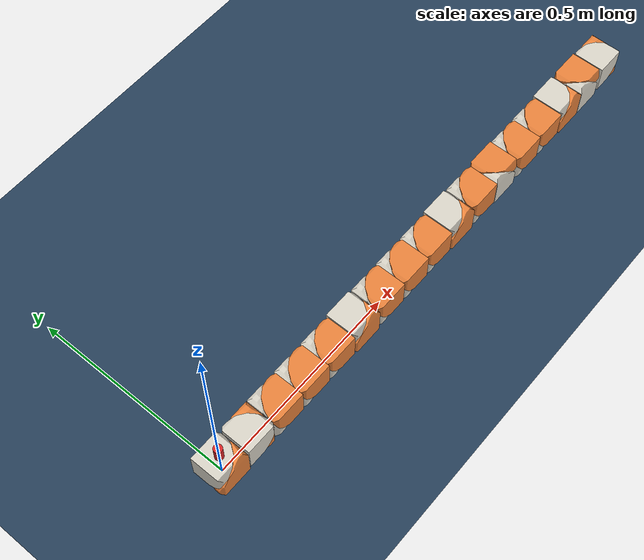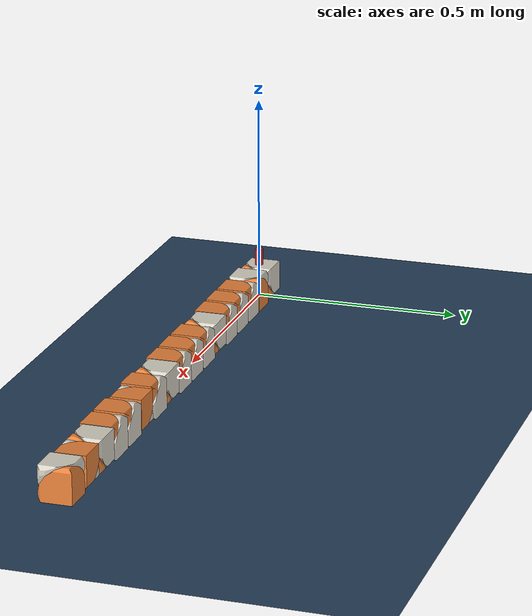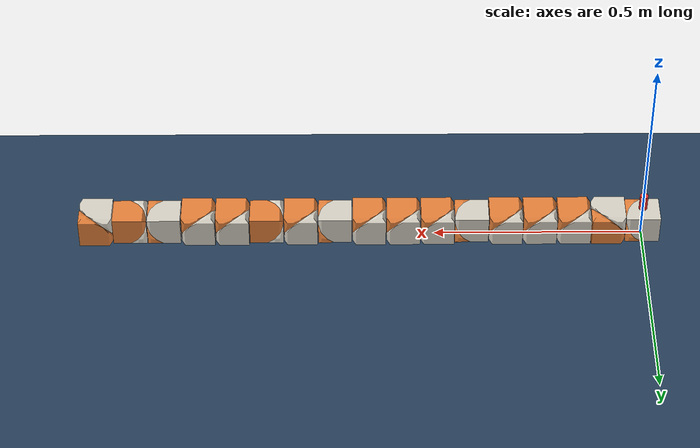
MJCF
<mujoco model="cubot_17 scene">
  <!-- Load THIS file. It adds the floor, lights and camera around the chain in cubot_17.xml. -->
  <include file="cubot_17.xml"/>

  <statistic center="0.66 0 0.05" extent="1.6"/>
  <visual>
    <headlight diffuse="0.6 0.6 0.6" ambient="0.3 0.3 0.3" specular="0 0 0"/>
    <rgba haze="0.15 0.25 0.35 1"/>
    <global azimuth="140" elevation="-25" offwidth="1920" offheight="1080"/>
    <map znear="0.01"/>
  </visual>
  <asset>
    <texture type="skybox" builtin="gradient" rgb1="0.3 0.5 0.7" rgb2="0 0 0" width="512" height="3072"/>
    <texture type="2d" name="groundplane" builtin="checker" mark="edge" rgb1="0.2 0.3 0.4" rgb2="0.1 0.2 0.3"
             markrgb="0.8 0.8 0.8" width="300" height="300"/>
    <material name="groundplane" texture="groundplane" texuniform="true" texrepeat="5 5" reflectance="0.2"/>
  </asset>
  <worldbody>
    <light pos="0 0 3" dir="0 0 -1" directional="true"/>
    <light pos="1.5 -1.5 2" dir="-0.4 0.4 -1" diffuse="0.4 0.4 0.4"/>
    <geom name="floor" type="plane" size="0 0 0.05" material="groundplane"/>
  </worldbody>
</mujoco>

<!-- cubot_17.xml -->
<mujoco model="cubot_17">
  <compiler angle="radian" meshdir="meshes" autolimits="true"/>
  <option timestep="0.002" integrator="implicitfast"/>

  <default>
    <joint damping="0.05" armature="0.005"/>
    <geom friction="0.8 0.01 0.001"/>
    <default class="still"><geom type="mesh" rgba="0.85 0.83 0.78 1"/></default>
    <default class="moving"><geom type="mesh" rgba="0.91 0.51 0.23 1"/></default>
    <default class="spacer"><geom type="box" rgba="0.45 0.47 0.5 1"/></default>
    <default class="wires"><geom type="cylinder" rgba="0.86 0.15 0.15 1"/></default>
    <default class="servo">
      <!-- a stiff position servo holding whatever detent it is commanded; force-capped at the planner's default -->
      <position kp="30" kv="1" ctrlrange="-2.09440 2.09440" forcerange="-5.8 5.8"/>
    </default>
  </default>

  <asset>
    <mesh name="still" file="still.stl"/>
    <mesh name="moving" file="moving.stl"/>
  </asset>

  <worldbody>
    <!-- laid down rolled 180 deg about +X so module 01's wires stay off the floor -->
    <body name="m01_still" pos="0 0 0.0400" quat="0.00000000 1.00000000 0 0">
      <freejoint name="root"/>
      <inertial pos="-0.01103093 -0.01103093 -0.01103093" mass="0.125" fullinertia="9.83829037e-05 9.83829037e-05 9.83829037e-05 1.31849188e-05 1.31849188e-05 1.31849188e-05"/>
      <geom class="still" mesh="still"/>
      <geom name="wires" class="wires" pos="0 0 -0.0600" size="0.01 0.02"/>
      <body name="m01_moving">
        <joint name="servo01" axis="0.57735027 0.57735027 0.57735027" range="-2.09439510 2.09439510"/>
        <inertial pos="0.01103093 0.01103093 0.01103093" mass="0.125" fullinertia="9.83829037e-05 9.83829037e-05 9.83829037e-05 1.31849188e-05 1.31849188e-05 1.31849188e-05"/>
        <geom class="moving" mesh="moving"/>
        <geom class="spacer" pos="0.041100 0 0" size="0.0011 0.025 0.025"/>
        <body name="m02_still" pos="0.0822 0 0" quat="0.70710678 0.70710678 0 0">
          <inertial pos="-0.01103093 -0.01103093 -0.01103093" mass="0.125" fullinertia="9.83829037e-05 9.83829037e-05 9.83829037e-05 1.31849188e-05 1.31849188e-05 1.31849188e-05"/>
          <geom class="still" mesh="still"/>
          <body name="m02_moving">
            <joint name="servo02" axis="0.57735027 0.57735027 0.57735027" range="-2.09439510 2.09439510"/>
            <inertial pos="0.01103093 0.01103093 0.01103093" mass="0.125" fullinertia="9.83829037e-05 9.83829037e-05 9.83829037e-05 1.31849188e-05 1.31849188e-05 1.31849188e-05"/>
            <geom class="moving" mesh="moving"/>
            <geom class="spacer" pos="0.041100 0 0" size="0.0011 0.025 0.025"/>
            <body name="m03_still" pos="0.0822 0 0" quat="0.00000000 1.00000000 0 0">
              <inertial pos="-0.01103093 -0.01103093 -0.01103093" mass="0.125" fullinertia="9.83829037e-05 9.83829037e-05 9.83829037e-05 1.31849188e-05 1.31849188e-05 1.31849188e-05"/>
              <geom class="still" mesh="still"/>
              <body name="m03_moving">
                <joint name="servo03" axis="0.57735027 0.57735027 0.57735027" range="-2.09439510 2.09439510"/>
                <inertial pos="0.01103093 0.01103093 0.01103093" mass="0.125" fullinertia="9.83829037e-05 9.83829037e-05 9.83829037e-05 1.31849188e-05 1.31849188e-05 1.31849188e-05"/>
                <geom class="moving" mesh="moving"/>
                <geom class="spacer" pos="0.041100 0 0" size="0.0011 0.025 0.025"/>
                <body name="m04_still" pos="0.0822 0 0" quat="1.00000000 0.00000000 0 0">
                  <inertial pos="-0.01103093 -0.01103093 -0.01103093" mass="0.125" fullinertia="9.83829037e-05 9.83829037e-05 9.83829037e-05 1.31849188e-05 1.31849188e-05 1.31849188e-05"/>
                  <geom class="still" mesh="still"/>
                  <body name="m04_moving">
                    <joint name="servo04" axis="0.57735027 0.57735027 0.57735027" range="-2.09439510 2.09439510"/>
                    <inertial pos="0.01103093 0.01103093 0.01103093" mass="0.125" fullinertia="9.83829037e-05 9.83829037e-05 9.83829037e-05 1.31849188e-05 1.31849188e-05 1.31849188e-05"/>
                    <geom class="moving" mesh="moving"/>
                    <geom class="spacer" pos="0.041100 0 0" size="0.0011 0.025 0.025"/>
                    <body name="m05_still" pos="0.0822 0 0" quat="1.00000000 0.00000000 0 0">
                      <inertial pos="-0.01103093 -0.01103093 -0.01103093" mass="0.125" fullinertia="9.83829037e-05 9.83829037e-05 9.83829037e-05 1.31849188e-05 1.31849188e-05 1.31849188e-05"/>
                      <geom class="still" mesh="still"/>
                      <body name="m05_moving">
                        <joint name="servo05" axis="0.57735027 0.57735027 0.57735027" range="-2.09439510 2.09439510"/>
                        <inertial pos="0.01103093 0.01103093 0.01103093" mass="0.125" fullinertia="9.83829037e-05 9.83829037e-05 9.83829037e-05 1.31849188e-05 1.31849188e-05 1.31849188e-05"/>
                        <geom class="moving" mesh="moving"/>
                        <geom class="spacer" pos="0.041100 0 0" size="0.0011 0.025 0.025"/>
                        <body name="m06_still" pos="0.0822 0 0" quat="0.70710678 0.70710678 0 0">
                          <inertial pos="-0.01103093 -0.01103093 -0.01103093" mass="0.125" fullinertia="9.83829037e-05 9.83829037e-05 9.83829037e-05 1.31849188e-05 1.31849188e-05 1.31849188e-05"/>
                          <geom class="still" mesh="still"/>
                          <body name="m06_moving">
                            <joint name="servo06" axis="0.57735027 0.57735027 0.57735027" range="-2.09439510 2.09439510"/>
                            <inertial pos="0.01103093 0.01103093 0.01103093" mass="0.125" fullinertia="9.83829037e-05 9.83829037e-05 9.83829037e-05 1.31849188e-05 1.31849188e-05 1.31849188e-05"/>
                            <geom class="moving" mesh="moving"/>
                            <geom class="spacer" pos="0.041100 0 0" size="0.0011 0.025 0.025"/>
                            <body name="m07_still" pos="0.0822 0 0" quat="-0.70710678 0.70710678 0 0">
                              <inertial pos="-0.01103093 -0.01103093 -0.01103093" mass="0.125" fullinertia="9.83829037e-05 9.83829037e-05 9.83829037e-05 1.31849188e-05 1.31849188e-05 1.31849188e-05"/>
                              <geom class="still" mesh="still"/>
                              <body name="m07_moving">
                                <joint name="servo07" axis="0.57735027 0.57735027 0.57735027" range="-2.09439510 2.09439510"/>
                                <inertial pos="0.01103093 0.01103093 0.01103093" mass="0.125" fullinertia="9.83829037e-05 9.83829037e-05 9.83829037e-05 1.31849188e-05 1.31849188e-05 1.31849188e-05"/>
                                <geom class="moving" mesh="moving"/>
                                <geom class="spacer" pos="0.041100 0 0" size="0.0011 0.025 0.025"/>
                                <body name="m08_still" pos="0.0822 0 0" quat="1.00000000 0.00000000 0 0">
                                  <inertial pos="-0.01103093 -0.01103093 -0.01103093" mass="0.125" fullinertia="9.83829037e-05 9.83829037e-05 9.83829037e-05 1.31849188e-05 1.31849188e-05 1.31849188e-05"/>
                                  <geom class="still" mesh="still"/>
                                  <body name="m08_moving">
                                    <joint name="servo08" axis="0.57735027 0.57735027 0.57735027" range="-2.09439510 2.09439510"/>
                                    <inertial pos="0.01103093 0.01103093 0.01103093" mass="0.125" fullinertia="9.83829037e-05 9.83829037e-05 9.83829037e-05 1.31849188e-05 1.31849188e-05 1.31849188e-05"/>
                                    <geom class="moving" mesh="moving"/>
                                    <geom class="spacer" pos="0.041100 0 0" size="0.0011 0.025 0.025"/>
                                    <body name="m09_still" pos="0.0822 0 0" quat="1.00000000 0.00000000 0 0">
                                      <inertial pos="-0.01103093 -0.01103093 -0.01103093" mass="0.125" fullinertia="9.83829037e-05 9.83829037e-05 9.83829037e-05 1.31849188e-05 1.31849188e-05 1.31849188e-05"/>
                                      <geom class="still" mesh="still"/>
                                      <body name="m09_moving">
                                        <joint name="servo09" axis="0.57735027 0.57735027 0.57735027" range="-2.09439510 2.09439510"/>
                                        <inertial pos="0.01103093 0.01103093 0.01103093" mass="0.125" fullinertia="9.83829037e-05 9.83829037e-05 9.83829037e-05 1.31849188e-05 1.31849188e-05 1.31849188e-05"/>
                                        <geom class="moving" mesh="moving"/>
                                        <geom class="spacer" pos="0.041100 0 0" size="0.0011 0.025 0.025"/>
                                        <body name="m10_still" pos="0.0822 0 0" quat="0.70710678 0.70710678 0 0">
                                          <inertial pos="-0.01103093 -0.01103093 -0.01103093" mass="0.125" fullinertia="9.83829037e-05 9.83829037e-05 9.83829037e-05 1.31849188e-05 1.31849188e-05 1.31849188e-05"/>
                                          <geom class="still" mesh="still"/>
                                          <body name="m10_moving">
                                            <joint name="servo10" axis="0.57735027 0.57735027 0.57735027" range="-2.09439510 2.09439510"/>
                                            <inertial pos="0.01103093 0.01103093 0.01103093" mass="0.125" fullinertia="9.83829037e-05 9.83829037e-05 9.83829037e-05 1.31849188e-05 1.31849188e-05 1.31849188e-05"/>
                                            <geom class="moving" mesh="moving"/>
                                            <geom class="spacer" pos="0.041100 0 0" size="0.0011 0.025 0.025"/>
                                            <body name="m11_still" pos="0.0822 0 0" quat="-0.70710678 0.70710678 0 0">
                                              <inertial pos="-0.01103093 -0.01103093 -0.01103093" mass="0.125" fullinertia="9.83829037e-05 9.83829037e-05 9.83829037e-05 1.31849188e-05 1.31849188e-05 1.31849188e-05"/>
                                              <geom class="still" mesh="still"/>
                                              <body name="m11_moving">
                                                <joint name="servo11" axis="0.57735027 0.57735027 0.57735027" range="-2.09439510 2.09439510"/>
                                                <inertial pos="0.01103093 0.01103093 0.01103093" mass="0.125" fullinertia="9.83829037e-05 9.83829037e-05 9.83829037e-05 1.31849188e-05 1.31849188e-05 1.31849188e-05"/>
                                                <geom class="moving" mesh="moving"/>
                                                <geom class="spacer" pos="0.041100 0 0" size="0.0011 0.025 0.025"/>
                                                <body name="m12_still" pos="0.0822 0 0" quat="-0.70710678 0.70710678 0 0">
                                                  <inertial pos="-0.01103093 -0.01103093 -0.01103093" mass="0.125" fullinertia="9.83829037e-05 9.83829037e-05 9.83829037e-05 1.31849188e-05 1.31849188e-05 1.31849188e-05"/>
                                                  <geom class="still" mesh="still"/>
                                                  <body name="m12_moving">
                                                    <joint name="servo12" axis="0.57735027 0.57735027 0.57735027" range="-2.09439510 2.09439510"/>
                                                    <inertial pos="0.01103093 0.01103093 0.01103093" mass="0.125" fullinertia="9.83829037e-05 9.83829037e-05 9.83829037e-05 1.31849188e-05 1.31849188e-05 1.31849188e-05"/>
                                                    <geom class="moving" mesh="moving"/>
                                                    <geom class="spacer" pos="0.041100 0 0" size="0.0011 0.025 0.025"/>
                                                    <body name="m13_still" pos="0.0822 0 0" quat="0.70710678 0.70710678 0 0">
                                                      <inertial pos="-0.01103093 -0.01103093 -0.01103093" mass="0.125" fullinertia="9.83829037e-05 9.83829037e-05 9.83829037e-05 1.31849188e-05 1.31849188e-05 1.31849188e-05"/>
                                                      <geom class="still" mesh="still"/>
                                                      <body name="m13_moving">
                                                        <joint name="servo13" axis="0.57735027 0.57735027 0.57735027" range="-2.09439510 2.09439510"/>
                                                        <inertial pos="0.01103093 0.01103093 0.01103093" mass="0.125" fullinertia="9.83829037e-05 9.83829037e-05 9.83829037e-05 1.31849188e-05 1.31849188e-05 1.31849188e-05"/>
                                                        <geom class="moving" mesh="moving"/>
                                                        <geom class="spacer" pos="0.041100 0 0" size="0.0011 0.025 0.025"/>
                                                        <body name="m14_still" pos="0.0822 0 0" quat="1.00000000 0.00000000 0 0">
                                                          <inertial pos="-0.01103093 -0.01103093 -0.01103093" mass="0.125" fullinertia="9.83829037e-05 9.83829037e-05 9.83829037e-05 1.31849188e-05 1.31849188e-05 1.31849188e-05"/>
                                                          <geom class="still" mesh="still"/>
                                                          <body name="m14_moving">
                                                            <joint name="servo14" axis="0.57735027 0.57735027 0.57735027" range="-2.09439510 2.09439510"/>
                                                            <inertial pos="0.01103093 0.01103093 0.01103093" mass="0.125" fullinertia="9.83829037e-05 9.83829037e-05 9.83829037e-05 1.31849188e-05 1.31849188e-05 1.31849188e-05"/>
                                                            <geom class="moving" mesh="moving"/>
                                                            <geom class="spacer" pos="0.041100 0 0" size="0.0011 0.025 0.025"/>
                                                            <body name="m15_still" pos="0.0822 0 0" quat="0.70710678 0.70710678 0 0">
                                                              <inertial pos="-0.01103093 -0.01103093 -0.01103093" mass="0.125" fullinertia="9.83829037e-05 9.83829037e-05 9.83829037e-05 1.31849188e-05 1.31849188e-05 1.31849188e-05"/>
                                                              <geom class="still" mesh="still"/>
                                                              <body name="m15_moving">
                                                                <joint name="servo15" axis="0.57735027 0.57735027 0.57735027" range="-2.09439510 2.09439510"/>
                                                                <inertial pos="0.01103093 0.01103093 0.01103093" mass="0.125" fullinertia="9.83829037e-05 9.83829037e-05 9.83829037e-05 1.31849188e-05 1.31849188e-05 1.31849188e-05"/>
                                                                <geom class="moving" mesh="moving"/>
                                                                <geom class="spacer" pos="0.041100 0 0" size="0.0011 0.025 0.025"/>
                                                                <body name="m16_still" pos="0.0822 0 0" quat="0.00000000 1.00000000 0 0">
                                                                  <inertial pos="-0.01103093 -0.01103093 -0.01103093" mass="0.125" fullinertia="9.83829037e-05 9.83829037e-05 9.83829037e-05 1.31849188e-05 1.31849188e-05 1.31849188e-05"/>
                                                                  <geom class="still" mesh="still"/>
                                                                  <body name="m16_moving">
                                                                    <joint name="servo16" axis="0.57735027 0.57735027 0.57735027" range="-2.09439510 2.09439510"/>
                                                                    <inertial pos="0.01103093 0.01103093 0.01103093" mass="0.125" fullinertia="9.83829037e-05 9.83829037e-05 9.83829037e-05 1.31849188e-05 1.31849188e-05 1.31849188e-05"/>
                                                                    <geom class="moving" mesh="moving"/>
                                                                    <geom class="spacer" pos="0.041100 0 0" size="0.0011 0.025 0.025"/>
                                                                    <body name="m17_still" pos="0.0822 0 0" quat="-0.70710678 0.70710678 0 0">
                                                                      <inertial pos="-0.01103093 -0.01103093 -0.01103093" mass="0.125" fullinertia="9.83829037e-05 9.83829037e-05 9.83829037e-05 1.31849188e-05 1.31849188e-05 1.31849188e-05"/>
                                                                      <geom class="still" mesh="still"/>
                                                                      <body name="m17_moving">
                                                                        <joint name="servo17" axis="0.57735027 0.57735027 0.57735027" range="-2.09439510 2.09439510"/>
                                                                        <inertial pos="0.01103093 0.01103093 0.01103093" mass="0.125" fullinertia="9.83829037e-05 9.83829037e-05 9.83829037e-05 1.31849188e-05 1.31849188e-05 1.31849188e-05"/>
                                                                        <geom class="moving" mesh="moving"/>
                                                                      </body>
                                                                    </body>
                                                                  </body>
                                                                </body>
                                                              </body>
                                                            </body>
                                                          </body>
                                                        </body>
                                                      </body>
                                                    </body>
                                                  </body>
                                                </body>
                                              </body>
                                            </body>
                                          </body>
                                        </body>
                                      </body>
                                    </body>
                                  </body>
                                </body>
                              </body>
                            </body>
                          </body>
                        </body>
                      </body>
                    </body>
                  </body>
                </body>
              </body>
            </body>
          </body>
        </body>
      </body>
    </body>
  </worldbody>

  <actuator>
    <position class="servo" name="servo01" joint="servo01"/>
    <position class="servo" name="servo02" joint="servo02"/>
    <position class="servo" name="servo03" joint="servo03"/>
    <position class="servo" name="servo04" joint="servo04"/>
    <position class="servo" name="servo05" joint="servo05"/>
    <position class="servo" name="servo06" joint="servo06"/>
    <position class="servo" name="servo07" joint="servo07"/>
    <position class="servo" name="servo08" joint="servo08"/>
    <position class="servo" name="servo09" joint="servo09"/>
    <position class="servo" name="servo10" joint="servo10"/>
    <position class="servo" name="servo11" joint="servo11"/>
    <position class="servo" name="servo12" joint="servo12"/>
    <position class="servo" name="servo13" joint="servo13"/>
    <position class="servo" name="servo14" joint="servo14"/>
    <position class="servo" name="servo15" joint="servo15"/>
    <position class="servo" name="servo16" joint="servo16"/>
    <position class="servo" name="servo17" joint="servo17"/>
  </actuator>
</mujoco>
